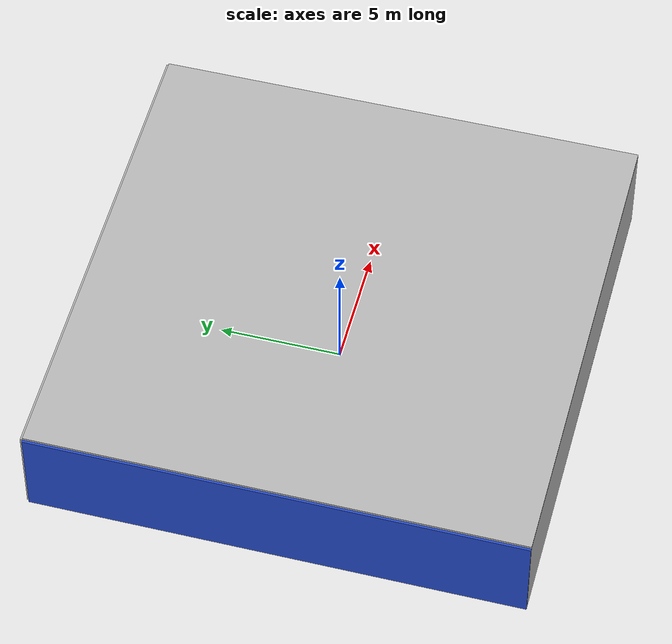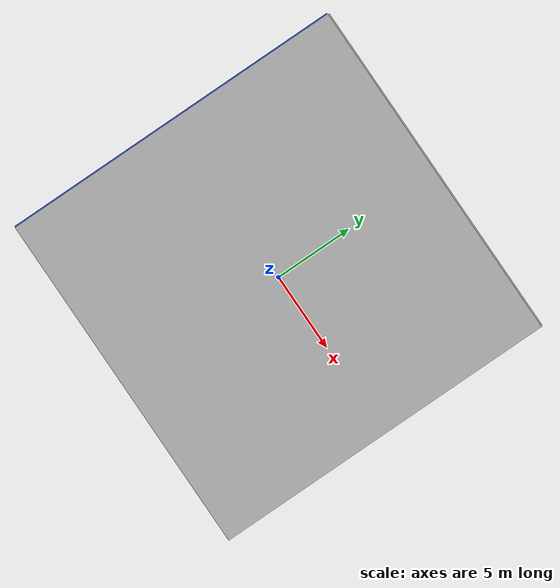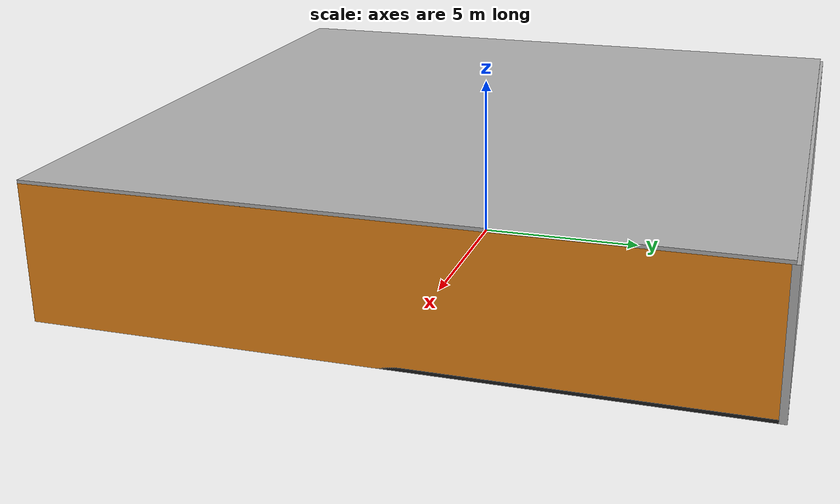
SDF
<sdf version="1.4">
 <world name="default">
  <physics type="ode">
   <max_step_size>0.001</max_step_size>
   <real_time_factor>1</real_time_factor>
   <real_time_update_rate>1000</real_time_update_rate>
   <gravity>0 0 -9.8</gravity>
  </physics>
  <scene><ambient>0.4 0.4 0.4 1</ambient><background>0.7 0.7 0.7 1</background><shadows>1</shadows></scene>
  <model name="Surrounding">
   <static>1</static>
   <link name="Ceiling">
    <collision name="Ceiling_Collision"><geometry><box><size>20 20 0.1</size></box></geometry></collision>
    <visual name="Ceiling_Visual">
     <geometry><box><size>20 20 0.1</size></box></geometry>
     <material>
      <script><uri>file://media/materials/scripts/gazebo.material</uri><name>Gazebo/JointAnchor</name></script>
     </material>
    </visual>
    <pose>0 0 4.05 0 0 0</pose>
   </link>
   <link name="Wall_South">
    <collision name="Wall_South_Collision">
     <geometry><box><size>20 0 4</size></box></geometry>
     <pose>0 0 2 0 -0 0</pose>
    </collision>
    <visual name="Wall_South_Visual">
     <pose>0 0 2 0 -0 0</pose>
     <geometry><box><size>20 0 4</size></box></geometry>
     <material>
      <script><uri>file://media/materials/scripts/gazebo.material</uri><name>Gazebo/CloudySky</name></script>
     </material>
    </visual>
    <velocity_decay><linear>0</linear><angular>0</angular></velocity_decay>
    <pose>0 -10 0 0 -0 0</pose>
   </link>
   <link name="Wall_East">
    <collision name="Wall_21_Collision">
     <geometry><box><size>20 0 4</size></box></geometry>
     <pose>0 0 2 0 -0 0</pose>
    </collision>
    <visual name="Wall_21_Visual">
     <pose>0 0 2 0 -0 0</pose>
     <geometry><box><size>20 0 4</size></box></geometry>
     <material>
      <script><uri>file://media/materials/scripts/gazebo.material</uri><name>Gazebo/Orange</name></script>
     </material>
    </visual>
    <velocity_decay><linear>0</linear><angular>0</angular></velocity_decay>
    <pose>10 0 0 0 -0 1.5708</pose>
   </link>
   <link name="Wall_North">
    <collision name="Wall_22_Collision">
     <geometry><box><size>20 0.2 4</size></box></geometry>
     <pose>0 0 2 0 -0 0</pose>
    </collision>
    <visual name="Wall_22_Visual">
     <pose>0 0 2 0 -0 0</pose>
     <geometry><box><size>20 0.2 4</size></box></geometry>
     <material>
      <script><uri>file://media/materials/scripts/gazebo.material</uri><name>Gazebo/PioneerBody</name></script>
     </material>
    </visual>
    <velocity_decay><linear>0</linear><angular>0</angular></velocity_decay>
    <pose>0 10 0 0 -0 0</pose>
   </link>
   <link name="Wall_West">
    <collision name="Wall_23_Collision">
     <geometry><box><size>20 0.2 4</size></box></geometry>
     <pose>0 0 2 0 -0 0</pose>
    </collision>
    <visual name="Wall_23_Visual">
     <pose>0 0 2 0 -0 0</pose>
     <geometry><box><size>20 0.2 4</size></box></geometry>
     <material>
      <script><uri>file://media/materials/scripts/gazebo.material</uri><name>Gazebo/Blue</name></script>
     </material>
    </visual>
    <velocity_decay><linear>0</linear><angular>0</angular></velocity_decay>
    <pose>-10 0 0 0 0 -1.5708</pose>
   </link>
   <link name="Ground_link">
    <collision name="collision">
     <pose>0 0 .05 0 -0 0</pose>
     <geometry><box><size>20 20 0.1</size></box></geometry>
    </collision>
    <visual name="visual">
     <pose>0 0 .05 0 -0 0</pose>
     <geometry><box><size>20 20 0.1</size></box></geometry>
     <material>
      <script><uri>file://media/materials/scripts/gazebo.material</uri><name>Gazebo/FlatBlack</name></script>
     </material>
    </visual>
   </link>
   <static>1</static>
  </model>
  <spherical_coordinates>
   <surface_model>EARTH_WGS84</surface_model>
   <latitude_deg>0</latitude_deg>
   <longitude_deg>0</longitude_deg>
   <elevation>0</elevation>
   <heading_deg>0</heading_deg>
  </spherical_coordinates>
  <light name="lightball_0" type="diffuse">
   <diffuse>0.8 0.8 0.8 1</diffuse>
   <specular>0.2 0.2 0.2 1</specular>
   <attenuation>
    <range>100</range>
    <constant>0.7</constant>
    <linear>0.01</linear>
    <quadratic>0.001</quadratic>
   </attenuation>
   <direction>-0.5 0.1 -0.9</direction>
   <pose>4.15747179933 0.664017007053 1.11198170304 0 0 0</pose>
  </light>
  <light name="lightball_1" type="diffuse">
   <diffuse>0.8 0.8 0.8 1</diffuse>
   <specular>0.2 0.2 0.2 1</specular>
   <attenuation>
    <range>100</range>
    <constant>0.7</constant>
    <linear>0.01</linear>
    <quadratic>0.001</quadratic>
   </attenuation>
   <direction>-0.5 0.1 -0.9</direction>
   <pose>-3.49686682277 -9.40898720842 3.44163536564 0 0 0</pose>
  </light>
  <light name="lightball_2" type="diffuse">
   <diffuse>0.8 0.8 0.8 1</diffuse>
   <specular>0.2 0.2 0.2 1</specular>
   <attenuation>
    <range>100</range>
    <constant>0.7</constant>
    <linear>0.01</linear>
    <quadratic>0.001</quadratic>
   </attenuation>
   <direction>-0.5 0.1 -0.9</direction>
   <pose>-9.33334520593 -3.32366846356 2.61909574568 0 0 0</pose>
  </light>
  <light name="lightball_3" type="diffuse">
   <diffuse>0.8 0.8 0.8 1</diffuse>
   <specular>0.2 0.2 0.2 1</specular>
   <attenuation>
    <range>100</range>
    <constant>0.7</constant>
    <linear>0.01</linear>
    <quadratic>0.001</quadratic>
   </attenuation>
   <direction>-0.5 0.1 -0.9</direction>
   <pose>-3.05299965658 0.943551562461 0.642048895224 0 0 0</pose>
  </light>
  <light name="lightball_4" type="diffuse">
   <diffuse>0.8 0.8 0.8 1</diffuse>
   <specular>0.2 0.2 0.2 1</specular>
   <attenuation>
    <range>100</range>
    <constant>0.7</constant>
    <linear>0.01</linear>
    <quadratic>0.001</quadratic>
   </attenuation>
   <direction>-0.5 0.1 -0.9</direction>
   <pose>-6.46089331805 -4.8219326677 3.29537246168 0 0 0</pose>
  </light>
  <include><uri>model://cabinet</uri><pose>-4.82021096552 -1.87794026318 0 0 0 0.666188076109</pose></include>
  <include><uri>model://cabinet</uri><pose>-3.94982229472 5.27918696786 0 0 0 1.51616244996</pose></include>
  <include>
   <uri>model://textured_shapes</uri>
   <pose>-1.3679548955 1.42593290343 0 0 0 0.0632512880994</pose>
  </include>
 </world>
</sdf>

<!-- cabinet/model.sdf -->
<sdf version="1.5">
  <model name="cabinet">
    <static>true</static>
    <link name="cabinet_bottom_plate">
      <inertial>
        <pose>0 0 -1 0 0 0</pose>
        <inertia>
          <ixx>2.050000</ixx>
          <ixy>0</ixy>
          <ixz>0</ixz>
          <iyy>2.050000</iyy>
          <iyz>0</iyz>
          <izz>2.050000</izz>
        </inertia>
        <mass>25.000000</mass>
      </inertial>
      <collision name="cabinet_bottom_plate_geom">
        <pose>0 0 0.010000 0 0 0</pose>
        <geometry>
          <box>
            <size>0.450000 0.450000 0.020000</size>
          </box>
        </geometry>
      </collision>
      <visual name="cabinet_bottom_plate_geom_visual">
        <pose>0 0 0.010000 0 0 0</pose>
        <geometry>
          <box>
            <size>0.450000 0.450000 0.020000</size>
          </box>
        </geometry>
        <material>
          <script>
            <uri>model://media/materials/scripts/gazebo.material</uri>
            <name>Gazebo/Wood</name>
          </script>
        </material>
      </visual>
      <collision name="cabinet_bottom_plate_geom_cabinet_back_plate">
        <pose>0.235000 0 0.510000 0 0 0</pose>
        <geometry>
          <box>
            <size>0.020000 0.450000 1.020000</size>
          </box>
        </geometry>
      </collision>
      <visual name="cabinet_bottom_plate_geom_cabinet_back_plate_visual">
        <pose>0.235000 0 0.510000 0 0 0</pose>
        <geometry>
          <box>
            <size>0.020000 0.450000 1.020000</size>
          </box>
        </geometry>
        <material>
          <script>
            <uri>model://media/materials/scripts/gazebo.material</uri>
            <name>Gazebo/Wood</name>
          </script>
        </material>
      </visual>
      <collision name="cabinet_bottom_plate_geom_cabinet_left_plate">
        <pose>0 0.235000 0.510000 0 0 0</pose>
        <geometry>
          <box>
            <size>0.450000 0.020000 1.020000</size>
          </box>
        </geometry>
      </collision>
      <visual name="cabinet_bottom_plate_geom_cabinet_left_plate_visual">
        <pose>0 0.235000 0.510000 0 0 0</pose>
        <geometry>
          <box>
            <size>0.450000 0.020000 1.020000</size>
          </box>
        </geometry>
        <material>
          <script>
            <uri>model://media/materials/scripts/gazebo.material</uri>
            <name>Gazebo/Wood</name>
          </script>
        </material>
      </visual>
      <collision name="cabinet_bottom_plate_geom_cabinet_middle_plate">
        <pose>0 0 0.510000 0 0 0</pose>
        <geometry>
          <box>
            <size>0.450000 0.450000 0.020000</size>
          </box>
        </geometry>
      </collision>
      <visual name="cabinet_bottom_plate_geom_cabinet_middle_plate_visual">
        <pose>0 0 0.510000 0 0 0</pose>
        <geometry>
          <box>
            <size>0.450000 0.450000 0.020000</size>
          </box>
        </geometry>
        <material>
          <script>
            <uri>model://media/materials/scripts/gazebo.material</uri>
            <name>Gazebo/Wood</name>
          </script>
        </material>
      </visual>
      <collision name="cabinet_bottom_plate_geom_cabinet_right_plate">
        <pose>0 -0.235000 0.510000 0 0 0</pose>
        <geometry>
          <box>
            <size>0.450000 0.020000 1.020000</size>
          </box>
        </geometry>
      </collision>
      <visual name="cabinet_bottom_plate_geom_cabinet_right_plate_visual">
        <pose>0 -0.235000 0.510000 0 0 0</pose>
        <geometry>
          <box>
            <size>0.450000 0.020000 1.020000</size>
          </box>
        </geometry>
        <material>
          <script>
            <uri>model://media/materials/scripts/gazebo.material</uri>
            <name>Gazebo/Wood</name>
          </script>
        </material>
      </visual>
      <collision name="cabinet_bottom_plate_geom_cabinet_top_plate">
        <pose>0 0 1.010000 0 0 0</pose>
        <geometry>
          <box>
            <size>0.450000 0.450000 0.020000</size>
          </box>
        </geometry>
      </collision>
      <visual name="cabinet_bottom_plate_geom_cabinet_top_plate_visual">
        <pose>0 0 1.010000 0 0 0</pose>
        <geometry>
          <box>
            <size>0.450000 0.450000 0.020000</size>
          </box>
        </geometry>
        <material>
          <script>
            <uri>model://media/materials/scripts/gazebo.material</uri>
            <name>Gazebo/Wood</name>
          </script>
        </material>
      </visual>
    </link>
  </model>
</sdf>

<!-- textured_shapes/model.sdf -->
<sdf version="1.6">
  <model name="textured_shapes">
    <pose>0 0 0.5 0 0 0</pose>
    <link name="box">
      <pose>0 -1.5 0 0 0 0</pose>
      <collision name="collision">
        <geometry>
          <box>
            <size>1 1 1</size>
          </box>
        </geometry>
      </collision>
      <visual name="visual">
        <geometry>
          <box>
            <size>1 1 1</size>
          </box>
        </geometry>
        <material>
          <script>
            <uri>model://../model_source/models/textured_shapes/materials/scripts</uri>
            <uri>model://../model_source/models/textured_shapes/materials/textures</uri>
            <name>TexturedShape/Squares</name>
          </script>
        </material>
      </visual>
    </link>
    <link name="sphere">
      <collision name="collision">
        <geometry>
          <sphere>
            <radius>0.5</radius>
          </sphere>
        </geometry>
      </collision>
      <visual name="visual">
        <geometry>
          <sphere>
            <radius>0.5</radius>
          </sphere>
        </geometry>
        <material>
          <script>
            <uri>model://../model_source/models/textured_shapes/materials/scripts</uri>
            <uri>model://../model_source/models/textured_shapes/materials/textures</uri>
            <name>TexturedShape/Squares</name>
          </script>
        </material>
      </visual>
    </link>
    <link name="cylinder">
      <pose>0 1.5 0 0 0 0</pose>
      <collision name="collision">
        <geometry>
          <cylinder>
            <radius>0.5</radius>
            <length>1</length>
          </cylinder>
        </geometry>
      </collision>
      <visual name="visual">
        <geometry>
          <cylinder>
            <radius>0.5</radius>
            <length>1</length>
          </cylinder>
        </geometry>
        <material>
          <script>
            <uri>model://../model_source/models/textured_shapes/materials/scripts</uri>
            <uri>model://../model_source/models/textured_shapes/materials/textures</uri>
            <name>TexturedShape/Squares</name>
          </script>
        </material>
      </visual>
    </link>
  </model>
</sdf>
